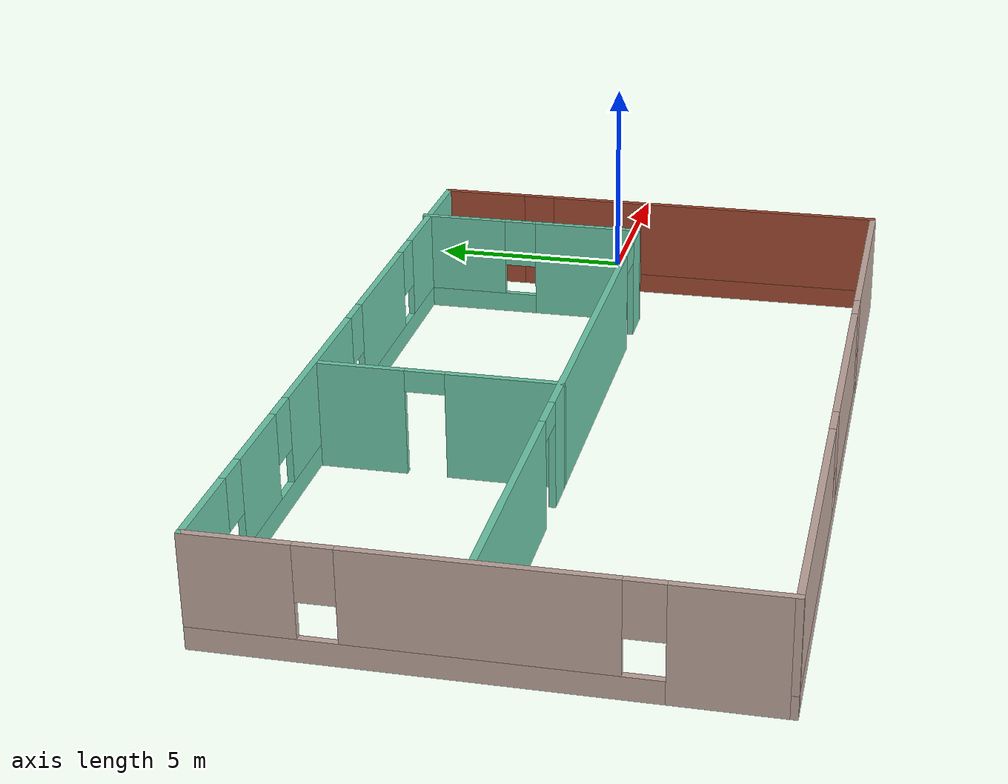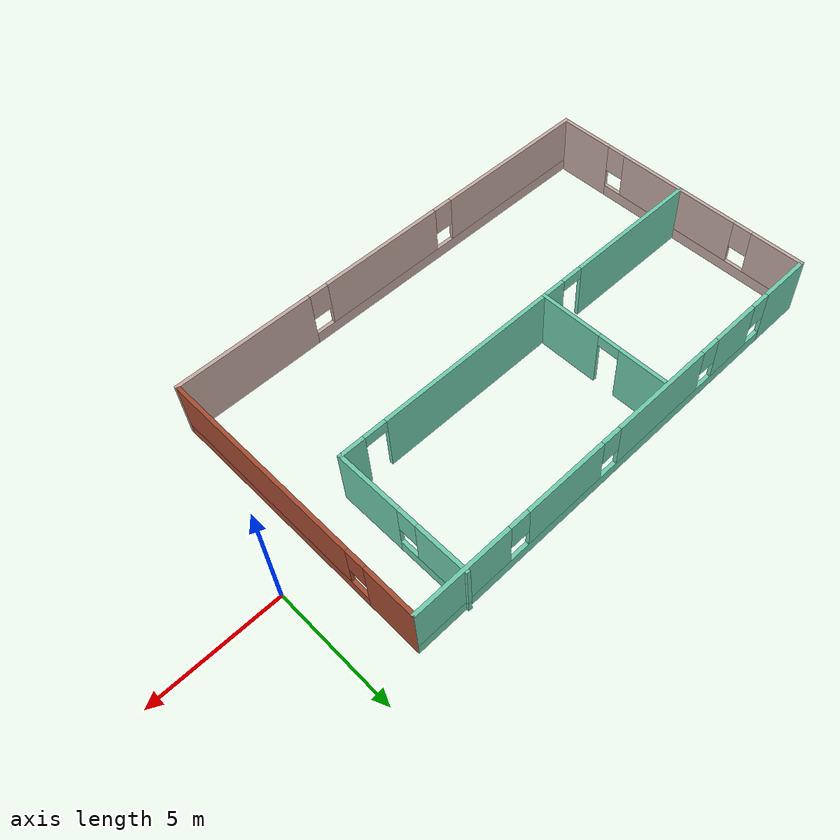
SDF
<?xml version='1.0'?>
<sdf version='1.6'>
  <model name='myHouse'>
    <pose frame=''>-11.1801 -1.29797 0 0 -0 0</pose>
    <link name='Wall_13'>
      <pose frame=''>-9.425 -0.045494 0 0 -0 1.5708</pose>
      <visual name='Wall_13_Visual_0'>
        <pose frame=''>-4.55656 0 1.25 0 -0 0</pose>
        <geometry>
          <box>
            <size>2.38689 0.15 2.5</size>
          </box>
        </geometry>
        <material>
          <script>
            <uri>file://media/materials/scripts/gazebo.material</uri>
            <name>Gazebo/Grey</name>
          </script>
          <ambient>0.760784 0.662745 0.627451 1</ambient>
        </material>
      </visual>
      <collision name='Wall_13_Collision_0'>
        <geometry>
          <box>
            <size>2.38689 0.15 2.5</size>
          </box>
        </geometry>
        <pose frame=''>-4.55656 0 1.25 0 -0 0</pose>
      </collision>
      <visual name='Wall_13_Visual_1'>
        <pose frame=''>1.19344 0 0.25 0 -0 0</pose>
        <geometry>
          <box>
            <size>9.11311 0.15 0.5</size>
          </box>
        </geometry>
        <material>
          <script>
            <uri>file://media/materials/scripts/gazebo.material</uri>
            <name>Gazebo/Grey</name>
          </script>
          <ambient>0.760784 0.662745 0.627451 1</ambient>
        </material>
      </visual>
      <collision name='Wall_13_Collision_1'>
        <geometry>
          <box>
            <size>9.11311 0.15 0.5</size>
          </box>
        </geometry>
        <pose frame=''>1.19344 0 0.25 0 -0 0</pose>
      </collision>
      <visual name='Wall_13_Visual_2'>
        <pose frame=''>0.082545 0 1.5 0 -0 0</pose>
        <geometry>
          <box>
            <size>5.29132 0.15 2</size>
          </box>
        </geometry>
        <material>
          <script>
            <uri>file://media/materials/scripts/gazebo.material</uri>
            <name>Gazebo/Grey</name>
          </script>
          <ambient>0.760784 0.662745 0.627451 1</ambient>
        </material>
      </visual>
      <collision name='Wall_13_Collision_2'>
        <geometry>
          <box>
            <size>5.29132 0.15 2</size>
          </box>
        </geometry>
        <pose frame=''>0.082545 0 1.5 0 -0 0</pose>
      </collision>
      <visual name='Wall_13_Visual_3'>
        <pose frame=''>4.6391 0 1.5 0 -0 0</pose>
        <geometry>
          <box>
            <size>2.2218 0.15 2</size>
          </box>
        </geometry>
        <material>
          <script>
            <uri>file://media/materials/scripts/gazebo.material</uri>
            <name>Gazebo/Grey</name>
          </script>
          <ambient>0.760784 0.662745 0.627451 1</ambient>
        </material>
      </visual>
      <collision name='Wall_13_Collision_3'>
        <geometry>
          <box>
            <size>2.2218 0.15 2</size>
          </box>
        </geometry>
        <pose frame=''>4.6391 0 1.5 0 -0 0</pose>
      </collision>
      <visual name='Wall_13_Visual_4'>
        <pose frame=''>-2.96311 0 1.9 0 -0 0</pose>
        <geometry>
          <box>
            <size>0.8 0.15 1.2</size>
          </box>
        </geometry>
        <material>
          <script>
            <uri>file://media/materials/scripts/gazebo.material</uri>
            <name>Gazebo/Grey</name>
          </script>
          <ambient>0.760784 0.662745 0.627451 1</ambient>
        </material>
      </visual>
      <collision name='Wall_13_Collision_4'>
        <geometry>
          <box>
            <size>0.8 0.15 1.2</size>
          </box>
        </geometry>
        <pose frame=''>-2.96311 0 1.9 0 -0 0</pose>
      </collision>
      <visual name='Wall_13_Visual_5'>
        <pose frame=''>3.1282 0 1.9 0 -0 0</pose>
        <geometry>
          <box>
            <size>0.8 0.15 1.2</size>
          </box>
        </geometry>
        <material>
          <script>
            <uri>file://media/materials/scripts/gazebo.material</uri>
            <name>Gazebo/Grey</name>
          </script>
          <ambient>0.760784 0.662745 0.627451 1</ambient>
        </material>
      </visual>
      <collision name='Wall_13_Collision_5'>
        <geometry>
          <box>
            <size>0.8 0.15 1.2</size>
          </box>
        </geometry>
        <pose frame=''>3.1282 0 1.9 0 -0 0</pose>
      </collision>
    </link>
    <link name='Wall_14'>
      <pose frame=''>-1e-06 5.62951 0 0 -0 0</pose>
      <visual name='Wall_14_Visual_0'>
        <pose frame=''>-8.41086 0 1.25 0 -0 0</pose>
        <geometry>
          <box>
            <size>2.17828 0.15 2.5</size>
          </box>
        </geometry>
        <material>
          <script>
            <uri>file://media/materials/scripts/gazebo.material</uri>
            <name>Gazebo/Grey</name>
          </script>
          <ambient>0.435294 0.796078 0.67451 1</ambient>
        </material>
      </visual>
      <collision name='Wall_14_Collision_0'>
        <geometry>
          <box>
            <size>2.17828 0.15 2.5</size>
          </box>
        </geometry>
        <pose frame=''>-8.41086 0 1.25 0 -0 0</pose>
      </collision>
      <visual name='Wall_14_Visual_1'>
        <pose frame=''>1.08914 0 0.25 0 -0 0</pose>
        <geometry>
          <box>
            <size>16.8217 0.15 0.5</size>
          </box>
        </geometry>
        <material>
          <script>
            <uri>file://media/materials/scripts/gazebo.material</uri>
            <name>Gazebo/Grey</name>
          </script>
          <ambient>0.435294 0.796078 0.67451 1</ambient>
        </material>
      </visual>
      <collision name='Wall_14_Collision_1'>
        <geometry>
          <box>
            <size>16.8217 0.15 0.5</size>
          </box>
        </geometry>
        <pose frame=''>1.08914 0 0.25 0 -0 0</pose>
      </collision>
      <visual name='Wall_14_Visual_2'>
        <pose frame=''>-5.50319 0 1.5 0 -0 0</pose>
        <geometry>
          <box>
            <size>2.03705 0.15 2</size>
          </box>
        </geometry>
        <material>
          <script>
            <uri>file://media/materials/scripts/gazebo.material</uri>
            <name>Gazebo/Grey</name>
          </script>
          <ambient>0.435294 0.796078 0.67451 1</ambient>
        </material>
      </visual>
      <collision name='Wall_14_Collision_2'>
        <geometry>
          <box>
            <size>2.03705 0.15 2</size>
          </box>
        </geometry>
        <pose frame=''>-5.50319 0 1.5 0 -0 0</pose>
      </collision>
      <visual name='Wall_14_Visual_3'>
        <pose frame=''>-1.5501 0 1.5 0 -0 0</pose>
        <geometry>
          <box>
            <size>4.26914 0.15 2</size>
          </box>
        </geometry>
        <material>
          <script>
            <uri>file://media/materials/scripts/gazebo.material</uri>
            <name>Gazebo/Grey</name>
          </script>
          <ambient>0.435294 0.796078 0.67451 1</ambient>
        </material>
      </visual>
      <collision name='Wall_14_Collision_3'>
        <geometry>
          <box>
            <size>4.26914 0.15 2</size>
          </box>
        </geometry>
        <pose frame=''>-1.5501 0 1.5 0 -0 0</pose>
      </collision>
      <visual name='Wall_14_Visual_4'>
        <pose frame=''>3.08097 0 1.5 0 -0 0</pose>
        <geometry>
          <box>
            <size>3.393 0.15 2</size>
          </box>
        </geometry>
        <material>
          <script>
            <uri>file://media/materials/scripts/gazebo.material</uri>
            <name>Gazebo/Grey</name>
          </script>
          <ambient>0.435294 0.796078 0.67451 1</ambient>
        </material>
      </visual>
      <collision name='Wall_14_Collision_4'>
        <geometry>
          <box>
            <size>3.393 0.15 2</size>
          </box>
        </geometry>
        <pose frame=''>3.08097 0 1.5 0 -0 0</pose>
      </collision>
      <visual name='Wall_14_Visual_5'>
        <pose frame=''>7.53873 0 1.5 0 -0 0</pose>
        <geometry>
          <box>
            <size>3.92253 0.15 2</size>
          </box>
        </geometry>
        <material>
          <script>
            <uri>file://media/materials/scripts/gazebo.material</uri>
            <name>Gazebo/Grey</name>
          </script>
          <ambient>0.435294 0.796078 0.67451 1</ambient>
        </material>
      </visual>
      <collision name='Wall_14_Collision_5'>
        <geometry>
          <box>
            <size>3.92253 0.15 2</size>
          </box>
        </geometry>
        <pose frame=''>7.53873 0 1.5 0 -0 0</pose>
      </collision>
      <visual name='Wall_14_Visual_6'>
        <pose frame=''>-6.92172 0 1.9 0 -0 0</pose>
        <geometry>
          <box>
            <size>0.8 0.15 1.2</size>
          </box>
        </geometry>
        <material>
          <script>
            <uri>file://media/materials/scripts/gazebo.material</uri>
            <name>Gazebo/Grey</name>
          </script>
          <ambient>0.435294 0.796078 0.67451 1</ambient>
        </material>
      </visual>
      <collision name='Wall_14_Collision_6'>
        <geometry>
          <box>
            <size>0.8 0.15 1.2</size>
          </box>
        </geometry>
        <pose frame=''>-6.92172 0 1.9 0 -0 0</pose>
      </collision>
      <visual name='Wall_14_Visual_7'>
        <pose frame=''>-4.08467 0 1.9 0 -0 0</pose>
        <geometry>
          <box>
            <size>0.8 0.15 1.2</size>
          </box>
        </geometry>
        <material>
          <script>
            <uri>file://media/materials/scripts/gazebo.material</uri>
            <name>Gazebo/Grey</name>
          </script>
          <ambient>0.435294 0.796078 0.67451 1</ambient>
        </material>
      </visual>
      <collision name='Wall_14_Collision_7'>
        <geometry>
          <box>
            <size>0.8 0.15 1.2</size>
          </box>
        </geometry>
        <pose frame=''>-4.08467 0 1.9 0 -0 0</pose>
      </collision>
      <visual name='Wall_14_Visual_8'>
        <pose frame=''>0.984475 0 1.9 0 -0 0</pose>
        <geometry>
          <box>
            <size>0.8 0.15 1.2</size>
          </box>
        </geometry>
        <material>
          <script>
            <uri>file://media/materials/scripts/gazebo.material</uri>
            <name>Gazebo/Grey</name>
          </script>
          <ambient>0.435294 0.796078 0.67451 1</ambient>
        </material>
      </visual>
      <collision name='Wall_14_Collision_8'>
        <geometry>
          <box>
            <size>0.8 0.15 1.2</size>
          </box>
        </geometry>
        <pose frame=''>0.984475 0 1.9 0 -0 0</pose>
      </collision>
      <visual name='Wall_14_Visual_9'>
        <pose frame=''>5.17747 0 1.9 0 -0 0</pose>
        <geometry>
          <box>
            <size>0.8 0.15 1.2</size>
          </box>
        </geometry>
        <material>
          <script>
            <uri>file://media/materials/scripts/gazebo.material</uri>
            <name>Gazebo/Grey</name>
          </script>
          <ambient>0.435294 0.796078 0.67451 1</ambient>
        </material>
      </visual>
      <collision name='Wall_14_Collision_9'>
        <geometry>
          <box>
            <size>0.8 0.15 1.2</size>
          </box>
        </geometry>
        <pose frame=''>5.17747 0 1.9 0 -0 0</pose>
      </collision>
    </link>
    <link name='Wall_15'>
      <pose frame=''>9.425 -0.045494 0 0 0 -1.5708</pose>
      <visual name='Wall_15_Visual_0'>
        <pose frame=''>-4.65996 0 1.25 0 -0 0</pose>
        <geometry>
          <box>
            <size>2.18007 0.15 2.5</size>
          </box>
        </geometry>
        <material>
          <script>
            <uri>file://media/materials/scripts/gazebo.material</uri>
            <name>Gazebo/Bricks</name>
          </script>
          <ambient>0.760784 0.662745 0.627451 1</ambient>
        </material>
      </visual>
      <collision name='Wall_15_Collision_0'>
        <geometry>
          <box>
            <size>2.18007 0.15 2.5</size>
          </box>
        </geometry>
        <pose frame=''>-4.65996 0 1.25 0 -0 0</pose>
      </collision>
      <visual name='Wall_15_Visual_1'>
        <pose frame=''>1.09004 0 0.25 0 -0 0</pose>
        <geometry>
          <box>
            <size>9.31992 0.15 0.5</size>
          </box>
        </geometry>
        <material>
          <script>
            <uri>file://media/materials/scripts/gazebo.material</uri>
            <name>Gazebo/Bricks</name>
          </script>
          <ambient>0.760784 0.662745 0.627451 1</ambient>
        </material>
      </visual>
      <collision name='Wall_15_Collision_1'>
        <geometry>
          <box>
            <size>9.31992 0.15 0.5</size>
          </box>
        </geometry>
        <pose frame=''>1.09004 0 0.25 0 -0 0</pose>
      </collision>
      <visual name='Wall_15_Visual_2'>
        <pose frame=''>1.49004 0 1.5 0 -0 0</pose>
        <geometry>
          <box>
            <size>8.51993 0.15 2</size>
          </box>
        </geometry>
        <material>
          <script>
            <uri>file://media/materials/scripts/gazebo.material</uri>
            <name>Gazebo/Bricks</name>
          </script>
          <ambient>0.760784 0.662745 0.627451 1</ambient>
        </material>
      </visual>
      <collision name='Wall_15_Collision_2'>
        <geometry>
          <box>
            <size>8.51993 0.15 2</size>
          </box>
        </geometry>
        <pose frame=''>1.49004 0 1.5 0 -0 0</pose>
      </collision>
      <visual name='Wall_15_Visual_3'>
        <pose frame=''>-3.16993 0 1.9 0 -0 0</pose>
        <geometry>
          <box>
            <size>0.8 0.15 1.2</size>
          </box>
        </geometry>
        <material>
          <script>
            <uri>file://media/materials/scripts/gazebo.material</uri>
            <name>Gazebo/Bricks</name>
          </script>
          <ambient>0.760784 0.662745 0.627451 1</ambient>
        </material>
      </visual>
      <collision name='Wall_15_Collision_3'>
        <geometry>
          <box>
            <size>0.8 0.15 1.2</size>
          </box>
        </geometry>
        <pose frame=''>-3.16993 0 1.9 0 -0 0</pose>
      </collision>
    </link>
    <link name='Wall_16'>
      <pose frame=''>-1e-06 -5.72049 0 0 -0 3.14159</pose>
      <visual name='Wall_16_Visual_0'>
        <pose frame=''>-6.71474 0 1.25 0 -0 0</pose>
        <geometry>
          <box>
            <size>5.57052 0.15 2.5</size>
          </box>
        </geometry>
        <material>
          <script>
            <uri>file://media/materials/scripts/gazebo.material</uri>
            <name>Gazebo/Grey</name>
          </script>
          <ambient>0.760784 0.662745 0.627451 1</ambient>
        </material>
      </visual>
      <collision name='Wall_16_Collision_0'>
        <geometry>
          <box>
            <size>5.57052 0.15 2.5</size>
          </box>
        </geometry>
        <pose frame=''>-6.71474 0 1.25 0 -0 0</pose>
      </collision>
      <visual name='Wall_16_Visual_1'>
        <pose frame=''>2.78526 0 0.25 0 -0 0</pose>
        <geometry>
          <box>
            <size>13.4295 0.15 0.5</size>
          </box>
        </geometry>
        <material>
          <script>
            <uri>file://media/materials/scripts/gazebo.material</uri>
            <name>Gazebo/Grey</name>
          </script>
          <ambient>0.760784 0.662745 0.627451 1</ambient>
        </material>
      </visual>
      <collision name='Wall_16_Collision_1'>
        <geometry>
          <box>
            <size>13.4295 0.15 0.5</size>
          </box>
        </geometry>
        <pose frame=''>2.78526 0 0.25 0 -0 0</pose>
      </collision>
      <visual name='Wall_16_Visual_2'>
        <pose frame=''>-0.525541 0 1.5 0 -0 0</pose>
        <geometry>
          <box>
            <size>5.20787 0.15 2</size>
          </box>
        </geometry>
        <material>
          <script>
            <uri>file://media/materials/scripts/gazebo.material</uri>
            <name>Gazebo/Grey</name>
          </script>
          <ambient>0.760784 0.662745 0.627451 1</ambient>
        </material>
      </visual>
      <collision name='Wall_16_Collision_2'>
        <geometry>
          <box>
            <size>5.20787 0.15 2</size>
          </box>
        </geometry>
        <pose frame=''>-0.525541 0 1.5 0 -0 0</pose>
      </collision>
      <visual name='Wall_16_Visual_3'>
        <pose frame=''>6.1892 0 1.5 0 -0 0</pose>
        <geometry>
          <box>
            <size>6.6216 0.15 2</size>
          </box>
        </geometry>
        <material>
          <script>
            <uri>file://media/materials/scripts/gazebo.material</uri>
            <name>Gazebo/Grey</name>
          </script>
          <ambient>0.760784 0.662745 0.627451 1</ambient>
        </material>
      </visual>
      <collision name='Wall_16_Collision_3'>
        <geometry>
          <box>
            <size>6.6216 0.15 2</size>
          </box>
        </geometry>
        <pose frame=''>6.1892 0 1.5 0 -0 0</pose>
      </collision>
      <visual name='Wall_16_Visual_4'>
        <pose frame=''>-3.52948 0 1.9 0 -0 0</pose>
        <geometry>
          <box>
            <size>0.8 0.15 1.2</size>
          </box>
        </geometry>
        <material>
          <script>
            <uri>file://media/materials/scripts/gazebo.material</uri>
            <name>Gazebo/Grey</name>
          </script>
          <ambient>0.760784 0.662745 0.627451 1</ambient>
        </material>
      </visual>
      <collision name='Wall_16_Collision_4'>
        <geometry>
          <box>
            <size>0.8 0.15 1.2</size>
          </box>
        </geometry>
        <pose frame=''>-3.52948 0 1.9 0 -0 0</pose>
      </collision>
      <visual name='Wall_16_Visual_5'>
        <pose frame=''>2.4784 0 1.9 0 -0 0</pose>
        <geometry>
          <box>
            <size>0.8 0.15 1.2</size>
          </box>
        </geometry>
        <material>
          <script>
            <uri>file://media/materials/scripts/gazebo.material</uri>
            <name>Gazebo/Grey</name>
          </script>
          <ambient>0.760784 0.662745 0.627451 1</ambient>
        </material>
      </visual>
      <collision name='Wall_16_Collision_5'>
        <geometry>
          <box>
            <size>0.8 0.15 1.2</size>
          </box>
        </geometry>
        <pose frame=''>2.4784 0 1.9 0 -0 0</pose>
      </collision>
    </link>
    <link name='Wall_18'>
      <pose frame=''>-0.97914 0.120494 0 0 -0 0</pose>
      <visual name='Wall_18_Visual_0'>
        <pose frame=''>-5.61055 0 1.25 0 -0 0</pose>
        <geometry>
          <box>
            <size>5.7789 0.15 2.5</size>
          </box>
        </geometry>
        <material>
          <script>
            <uri>file://media/materials/scripts/gazebo.material</uri>
            <name>Gazebo/Grey</name>
          </script>
          <ambient>0.435294 0.796078 0.67451 1</ambient>
        </material>
      </visual>
      <collision name='Wall_18_Collision_0'>
        <geometry>
          <box>
            <size>5.7789 0.15 2.5</size>
          </box>
        </geometry>
        <pose frame=''>-5.61055 0 1.25 0 -0 0</pose>
      </collision>
      <visual name='Wall_18_Visual_1'>
        <pose frame=''>2.3704 0 1.25 0 -0 0</pose>
        <geometry>
          <box>
            <size>8.383 0.15 2.5</size>
          </box>
        </geometry>
        <material>
          <script>
            <uri>file://media/materials/scripts/gazebo.material</uri>
            <name>Gazebo/Grey</name>
          </script>
          <ambient>0.435294 0.796078 0.67451 1</ambient>
        </material>
      </visual>
      <collision name='Wall_18_Collision_1'>
        <geometry>
          <box>
            <size>8.383 0.15 2.5</size>
          </box>
        </geometry>
        <pose frame=''>2.3704 0 1.25 0 -0 0</pose>
      </collision>
      <visual name='Wall_18_Visual_2'>
        <pose frame=''>7.98095 0 1.25 0 -0 0</pose>
        <geometry>
          <box>
            <size>1.0381 0.15 2.5</size>
          </box>
        </geometry>
        <material>
          <script>
            <uri>file://media/materials/scripts/gazebo.material</uri>
            <name>Gazebo/Grey</name>
          </script>
          <ambient>0.435294 0.796078 0.67451 1</ambient>
        </material>
      </visual>
      <collision name='Wall_18_Collision_2'>
        <geometry>
          <box>
            <size>1.0381 0.15 2.5</size>
          </box>
        </geometry>
        <pose frame=''>7.98095 0 1.25 0 -0 0</pose>
      </collision>
      <visual name='Wall_18_Visual_3'>
        <pose frame=''>-2.2711 0 2.25 0 -0 0</pose>
        <geometry>
          <box>
            <size>0.9 0.15 0.5</size>
          </box>
        </geometry>
        <material>
          <script>
            <uri>file://media/materials/scripts/gazebo.material</uri>
            <name>Gazebo/Grey</name>
          </script>
          <ambient>0.435294 0.796078 0.67451 1</ambient>
        </material>
      </visual>
      <collision name='Wall_18_Collision_3'>
        <geometry>
          <box>
            <size>0.9 0.15 0.5</size>
          </box>
        </geometry>
        <pose frame=''>-2.2711 0 2.25 0 -0 0</pose>
      </collision>
      <visual name='Wall_18_Visual_4'>
        <pose frame=''>7.0119 0 2.25 0 -0 0</pose>
        <geometry>
          <box>
            <size>0.9 0.15 0.5</size>
          </box>
        </geometry>
        <material>
          <script>
            <uri>file://media/materials/scripts/gazebo.material</uri>
            <name>Gazebo/Grey</name>
          </script>
          <ambient>0.435294 0.796078 0.67451 1</ambient>
        </material>
      </visual>
      <collision name='Wall_18_Collision_4'>
        <geometry>
          <box>
            <size>0.9 0.15 0.5</size>
          </box>
        </geometry>
        <pose frame=''>7.0119 0 2.25 0 -0 0</pose>
      </collision>
    </link>
    <link name='Wall_19'>
      <pose frame=''>7.44586 2.92049 0 0 -0 1.5708</pose>
      <visual name='Wall_19_Visual_0'>
        <pose frame=''>-1.50424 0 1.25 0 -0 0</pose>
        <geometry>
          <box>
            <size>2.74152 0.15 2.5</size>
          </box>
        </geometry>
        <material>
          <script>
            <uri>file://media/materials/scripts/gazebo.material</uri>
            <name>Gazebo/Grey</name>
          </script>
          <ambient>0.435294 0.796078 0.67451 1</ambient>
        </material>
      </visual>
      <collision name='Wall_19_Collision_0'>
        <geometry>
          <box>
            <size>2.74152 0.15 2.5</size>
          </box>
        </geometry>
        <pose frame=''>-1.50424 0 1.25 0 -0 0</pose>
      </collision>
      <visual name='Wall_19_Visual_1'>
        <pose frame=''>1.37076 0 0.25 0 -0 0</pose>
        <geometry>
          <box>
            <size>3.00848 0.15 0.5</size>
          </box>
        </geometry>
        <material>
          <script>
            <uri>file://media/materials/scripts/gazebo.material</uri>
            <name>Gazebo/Grey</name>
          </script>
          <ambient>0.435294 0.796078 0.67451 1</ambient>
        </material>
      </visual>
      <collision name='Wall_19_Collision_1'>
        <geometry>
          <box>
            <size>3.00848 0.15 0.5</size>
          </box>
        </geometry>
        <pose frame=''>1.37076 0 0.25 0 -0 0</pose>
      </collision>
      <visual name='Wall_19_Visual_2'>
        <pose frame=''>1.77076 0 1.5 0 -0 0</pose>
        <geometry>
          <box>
            <size>2.20848 0.15 2</size>
          </box>
        </geometry>
        <material>
          <script>
            <uri>file://media/materials/scripts/gazebo.material</uri>
            <name>Gazebo/Grey</name>
          </script>
          <ambient>0.435294 0.796078 0.67451 1</ambient>
        </material>
      </visual>
      <collision name='Wall_19_Collision_2'>
        <geometry>
          <box>
            <size>2.20848 0.15 2</size>
          </box>
        </geometry>
        <pose frame=''>1.77076 0 1.5 0 -0 0</pose>
      </collision>
      <visual name='Wall_19_Visual_3'>
        <pose frame=''>0.266519 0 1.9 0 -0 0</pose>
        <geometry>
          <box>
            <size>0.8 0.15 1.2</size>
          </box>
        </geometry>
        <material>
          <script>
            <uri>file://media/materials/scripts/gazebo.material</uri>
            <name>Gazebo/Grey</name>
          </script>
          <ambient>0.435294 0.796078 0.67451 1</ambient>
        </material>
      </visual>
      <collision name='Wall_19_Collision_3'>
        <geometry>
          <box>
            <size>0.8 0.15 1.2</size>
          </box>
        </geometry>
        <pose frame=''>0.266519 0 1.9 0 -0 0</pose>
      </collision>
    </link>
    <link name='Wall_21'>
      <pose frame=''>-1.85258 2.79549 0 0 -0 1.5708</pose>
      <visual name='Wall_21_Visual_0'>
        <pose frame=''>-1.43553 0 1.25 0 -0 0</pose>
        <geometry>
          <box>
            <size>2.62894 0.15 2.5</size>
          </box>
        </geometry>
        <material>
          <script>
            <uri>file://media/materials/scripts/gazebo.material</uri>
            <name>Gazebo/Grey</name>
          </script>
          <ambient>0.435294 0.796078 0.67451 1</ambient>
        </material>
      </visual>
      <collision name='Wall_21_Collision_0'>
        <geometry>
          <box>
            <size>2.62894 0.15 2.5</size>
          </box>
        </geometry>
        <pose frame=''>-1.43553 0 1.25 0 -0 0</pose>
      </collision>
      <visual name='Wall_21_Visual_1'>
        <pose frame=''>1.76447 0 1.25 0 -0 0</pose>
        <geometry>
          <box>
            <size>1.97106 0.15 2.5</size>
          </box>
        </geometry>
        <material>
          <script>
            <uri>file://media/materials/scripts/gazebo.material</uri>
            <name>Gazebo/Grey</name>
          </script>
          <ambient>0.435294 0.796078 0.67451 1</ambient>
        </material>
      </visual>
      <collision name='Wall_21_Collision_1'>
        <geometry>
          <box>
            <size>1.97106 0.15 2.5</size>
          </box>
        </geometry>
        <pose frame=''>1.76447 0 1.25 0 -0 0</pose>
      </collision>
      <visual name='Wall_21_Visual_2'>
        <pose frame=''>0.328937 0 2.25 0 -0 0</pose>
        <geometry>
          <box>
            <size>0.9 0.15 0.5</size>
          </box>
        </geometry>
        <material>
          <script>
            <uri>file://media/materials/scripts/gazebo.material</uri>
            <name>Gazebo/Grey</name>
          </script>
          <ambient>0.435294 0.796078 0.67451 1</ambient>
        </material>
      </visual>
      <collision name='Wall_21_Collision_2'>
        <geometry>
          <box>
            <size>0.9 0.15 0.5</size>
          </box>
        </geometry>
        <pose frame=''>0.328937 0 2.25 0 -0 0</pose>
      </collision>
    </link>
    <static>1</static>
  </model>
</sdf>
